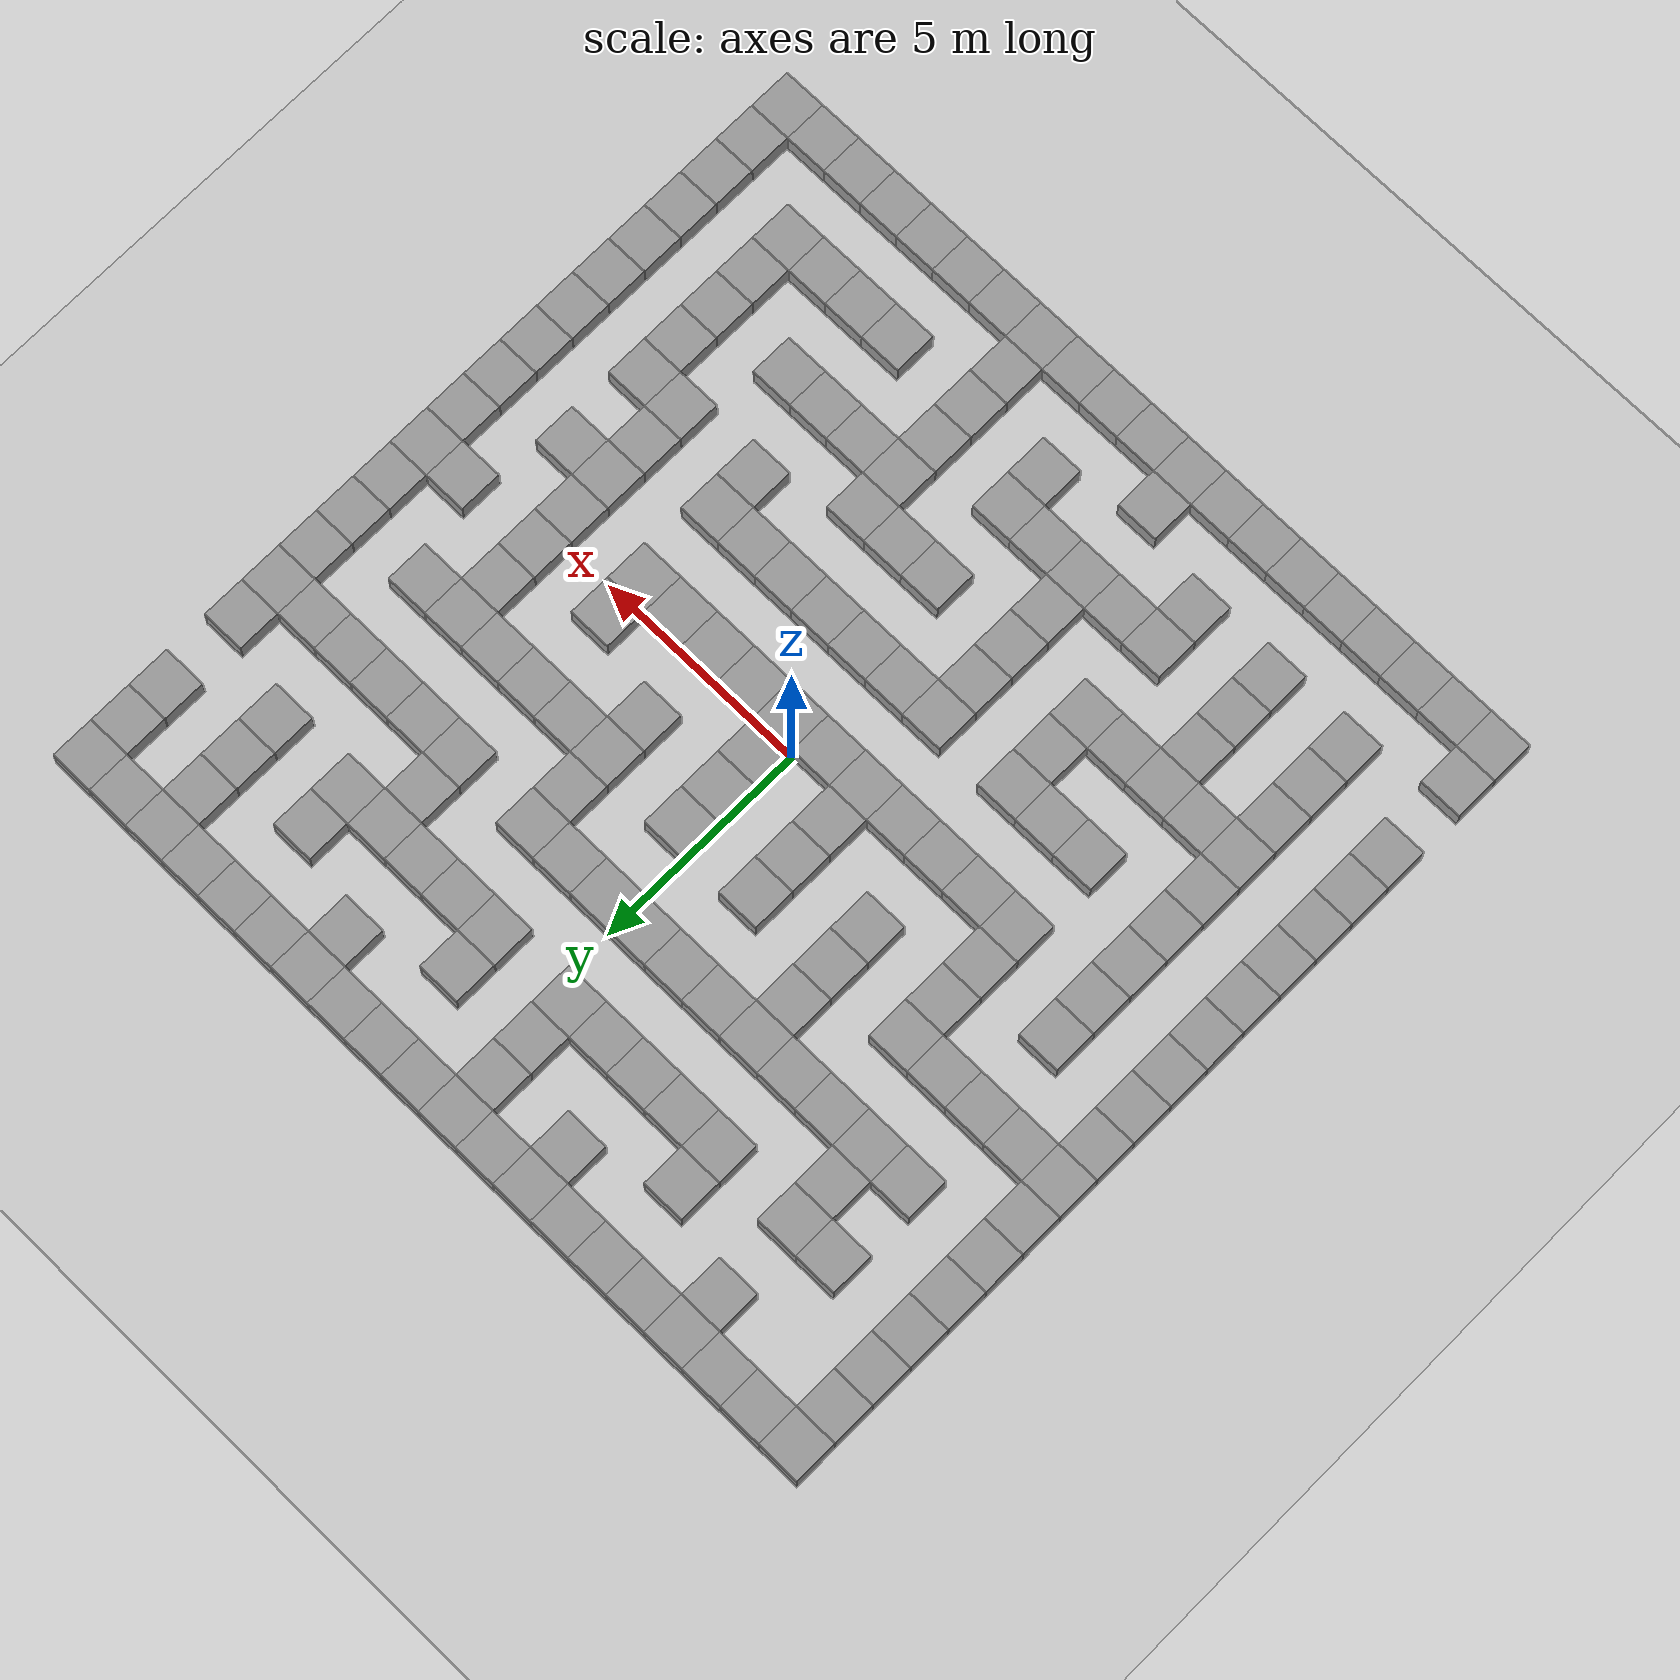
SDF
<sdf version="1.4">
   <world name="default">

     <scene>
       <ambient>0.4 0.4 0.4 1</ambient>
       <background>0.7 0.7 0.7 1</background>
       <shadows>true</shadows>
     </scene>

     <!-- A global light source -->
     <include>
       <uri>model://sun</uri>
     </include>

     <!-- A ground plane -->
     <include>
       <uri>model://ground_plane</uri>
     </include>

     <!-- Maze -->
     <include>
       <uri>model://maze1</uri>
 	     <pose>-0.25 2.125 0 0 0 0</pose>
     </include>

     <physics type="ode">
       <real_time_update_rate>1000.0</real_time_update_rate>
       <max_step_size>0.001</max_step_size>
       <real_time_factor>1</real_time_factor>
       <ode>
         <solver>
           <type>quick</type>
           <iters>150</iters>
           <precon_iters>0</precon_iters>
           <sor>1.400000</sor>
           <use_dynamic_moi_rescaling>1</use_dynamic_moi_rescaling>
         </solver>
         <constraints>
           <cfm>0.00001</cfm>
           <erp>0.2</erp>
           <contact_max_correcting_vel>2000.000000</contact_max_correcting_vel>
           <contact_surface_layer>0.01000</contact_surface_layer>
         </constraints>
       </ode>
     </physics>

    <plugin name='gazebo_occupancy_map' filename='libgazebo_2Dmap_plugin.so'>
      <map_resolution>0.5</map_resolution> <!-- in meters, optional, default 0.1 -->
      <map_height>0.3</map_height>         <!-- in meters, optional, default 0.3 -->
      <map_size_x>20</map_size_x>          <!-- in meters, optional, default 10 -->
      <map_size_y>20</map_size_y>          <!-- in meters, optional, default 10 -->
    </plugin>

   </world>

 </sdf>
